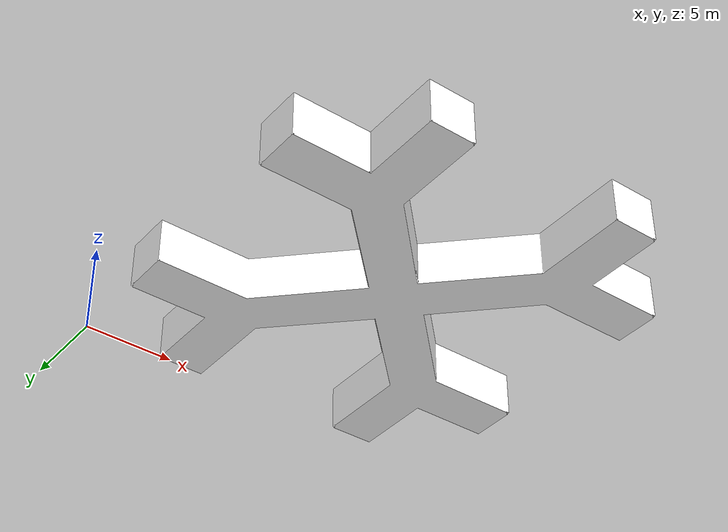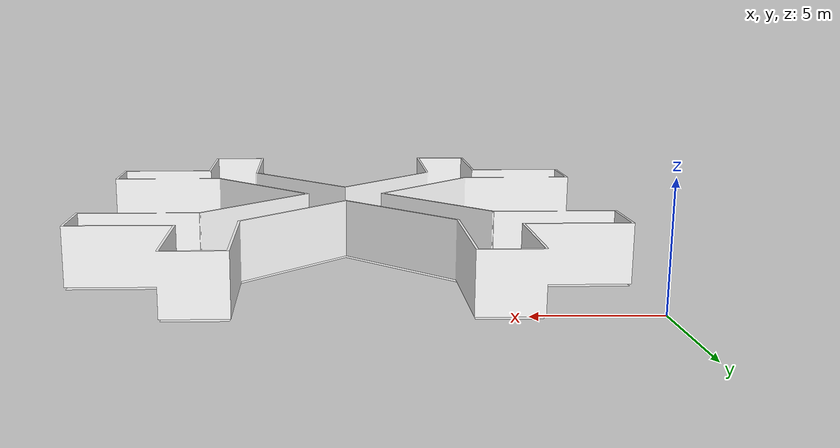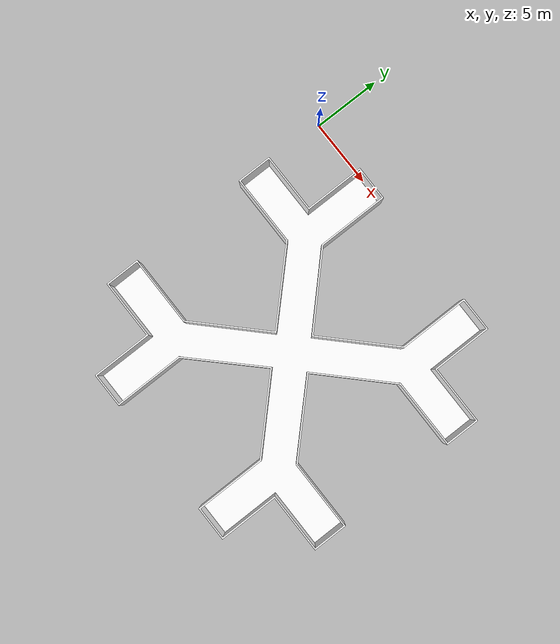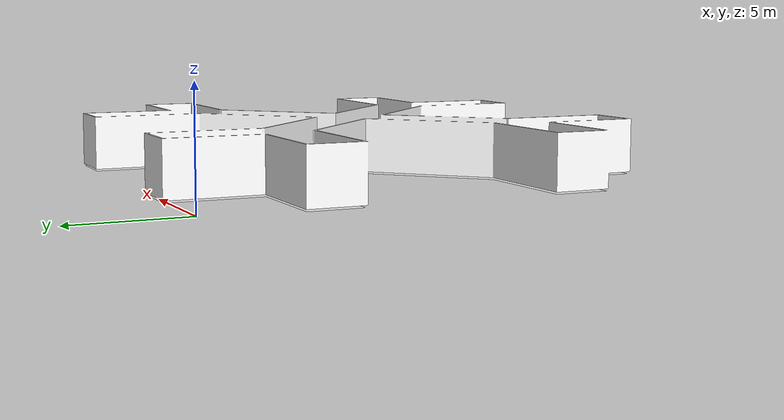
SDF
<?xml version='1.0' encoding='utf-8'?>
<sdf version="1.7">
  <model name="battle_royale_L1">
    <static>true</static>
    <link name="floor_1">
      <visual name="visual">
        <geometry>
          <mesh>
            <uri>model://battle_royale_L1/meshes/floor_1.obj</uri>
          </mesh>
        </geometry>
        <material>
          <diffuse>1.0 1.0 1.0</diffuse>
          <specular>0.1 0.1 0.1</specular>
          <pbr>
            <metal>
              <metalness>0.0</metalness>
              <albedo_map>model://battle_royale_L1/meshes/blue_linoleum.png</albedo_map>
            </metal>
          </pbr>
          <script>
            <uri>model://battle_royale_L1/meshes/</uri>
            <name>floor_1_Diffuse</name>
          </script>
        </material>
      </visual>
      <collision name="collision">
        <geometry>
          <mesh>
            <uri>model://battle_royale_L1/meshes/floor_1.obj</uri>
          </mesh>
        </geometry>
        <surface>
          <contact>
            <collide_bitmask>0x01</collide_bitmask>
          </contact>
        </surface>
      </collision>
    </link>
    <link name="wall_1">
      <visual name="wall_1">
        <geometry>
          <mesh>
            <uri>model://battle_royale_L1/meshes/wall_1.obj</uri>
          </mesh>
        </geometry>
        <transparency>0.0</transparency>
        <material>
          <diffuse>1.0 1.0 1.0</diffuse>
          <specular>0.1 0.1 0.1</specular>
          <pbr>
            <metal>
              <metalness>0.0</metalness>
              <albedo_map>model://battle_royale_L1/meshes/default.png</albedo_map>
            </metal>
          </pbr>
          <script>
            <uri>model://battle_royale_L1/meshes/</uri>
            <name>wall_1_Diffuse</name>
          </script>
        </material>
      </visual>
      <collision name="collision">
        <geometry>
          <mesh>
            <uri>model://battle_royale_L1/meshes/wall_1.obj</uri>
          </mesh>
        </geometry>
        <surface>
          <contact>
            <collide_bitmask>0x01</collide_bitmask>
          </contact>
        </surface>
      </collision>
      <pose>-0.005258117215849012 -22.66950309868852 0 0 0 0</pose>
    </link>
  </model>
</sdf>
